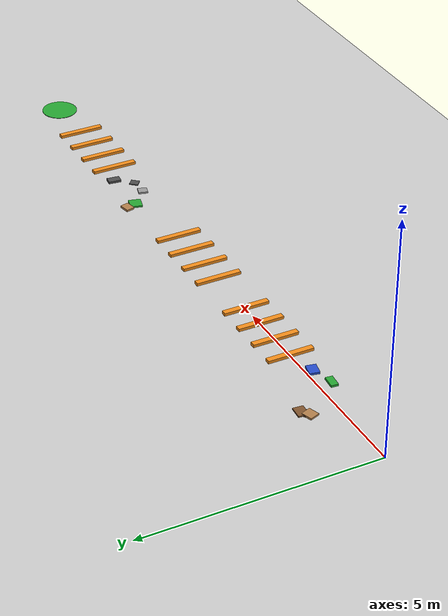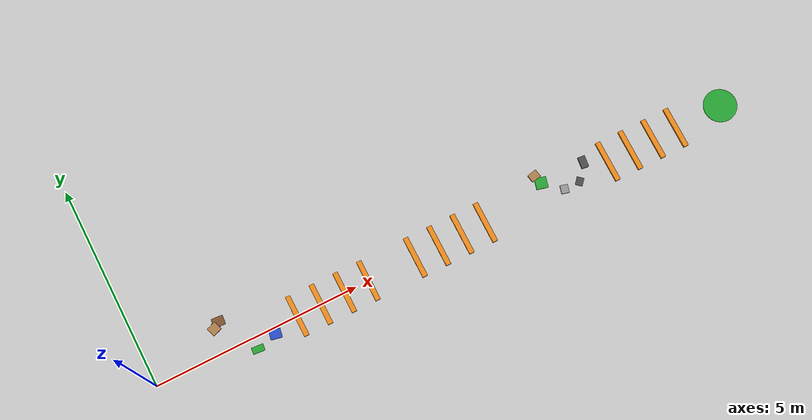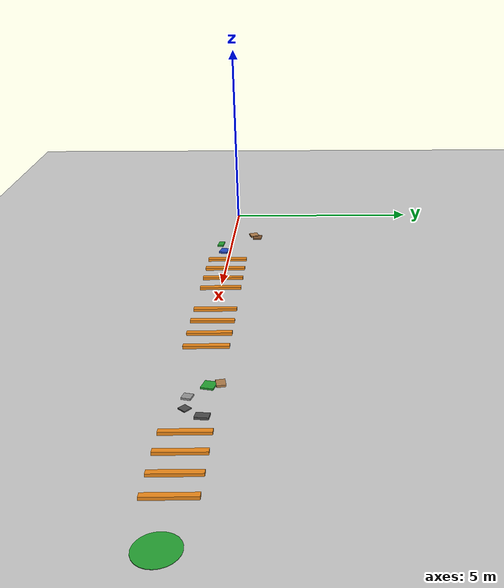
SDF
<?xml version="1.0" ?>
<!-- 由 omni_world.py 自动生成: scene=mixed seed=3 -->
<sdf version="1.5">
  <world name="mixed">
    <physics type="ode">
      <type>world</type>
      <max_step_size>0.001</max_step_size>
      <real_time_update_rate>1000</real_time_update_rate>
      <iters>500</iters>
    </physics>
    <include><uri>model://sun</uri></include>
    <include><uri>model://ground_plane</uri></include>
    <model name="mx_rough_0_0">
      <static>true</static>
      <pose>1.696 0.582 0.020 0.0000 0.0000 1.9025</pose>
      <link name="link">
        <collision name="collision">
          <geometry><box><size>0.221 0.237 0.041</size></box></geometry>
          <surface><friction><ode><mu>1.0</mu><mu2>1.0</mu2></ode></friction></surface>
        </collision>
        <visual name="visual">
          <geometry><box><size>0.221 0.237 0.041</size></box></geometry>
          <material><script><uri>file://media/materials/scripts/gazebo.material</uri>
            <name>Gazebo/Wood</name></script></material>
        </visual>
      </link>
    </model>
    <model name="mx_rough_0_1">
      <static>true</static>
      <pose>1.851 0.694 0.015 0.0000 0.0000 1.4965</pose>
      <link name="link">
        <collision name="collision">
          <geometry><box><size>0.221 0.275 0.029</size></box></geometry>
          <surface><friction><ode><mu>1.0</mu><mu2>1.0</mu2></ode></friction></surface>
        </collision>
        <visual name="visual">
          <geometry><box><size>0.221 0.275 0.029</size></box></geometry>
          <material><script><uri>file://media/materials/scripts/gazebo.material</uri>
            <name>Gazebo/Brown</name></script></material>
        </visual>
      </link>
    </model>
    <model name="mx_rough_0_2">
      <static>true</static>
      <pose>1.727 0.596 0.014 0.0000 0.0000 2.4418</pose>
      <link name="link">
        <collision name="collision">
          <geometry><box><size>0.208 0.152 0.028</size></box></geometry>
          <surface><friction><ode><mu>1.0</mu><mu2>1.0</mu2></ode></friction></surface>
        </collision>
        <visual name="visual">
          <geometry><box><size>0.208 0.152 0.028</size></box></geometry>
          <material><script><uri>file://media/materials/scripts/gazebo.material</uri>
            <name>Gazebo/Brown</name></script></material>
        </visual>
      </link>
    </model>
    <model name="mx_rough_0_3">
      <static>true</static>
      <pose>2.387 -0.278 0.023 0.0000 0.0000 1.4852</pose>
      <link name="link">
        <collision name="collision">
          <geometry><box><size>0.155 0.280 0.047</size></box></geometry>
          <surface><friction><ode><mu>1.0</mu><mu2>1.0</mu2></ode></friction></surface>
        </collision>
        <visual name="visual">
          <geometry><box><size>0.155 0.280 0.047</size></box></geometry>
          <material><script><uri>file://media/materials/scripts/gazebo.material</uri>
            <name>Gazebo/Green</name></script></material>
        </visual>
      </link>
    </model>
    <model name="mx_rough_0_4">
      <static>true</static>
      <pose>2.882 -0.147 0.022 0.0000 0.0000 2.9392</pose>
      <link name="link">
        <collision name="collision">
          <geometry><box><size>0.270 0.217 0.045</size></box></geometry>
          <surface><friction><ode><mu>1.0</mu><mu2>1.0</mu2></ode></friction></surface>
        </collision>
        <visual name="visual">
          <geometry><box><size>0.270 0.217 0.045</size></box></geometry>
          <material><script><uri>file://media/materials/scripts/gazebo.material</uri>
            <name>Gazebo/Blue</name></script></material>
        </visual>
      </link>
    </model>
    <model name="mx_bump_1_0">
      <static>true</static>
      <pose>3.500 0.000 0.033 0.0000 0.0000 0.0000</pose>
      <link name="link">
        <collision name="collision">
          <geometry><box><size>0.120 1.000 0.065</size></box></geometry>
          <surface><friction><ode><mu>1.0</mu><mu2>1.0</mu2></ode></friction></surface>
        </collision>
        <visual name="visual">
          <geometry><box><size>0.120 1.000 0.065</size></box></geometry>
          <material><script><uri>file://media/materials/scripts/gazebo.material</uri>
            <name>Gazebo/Orange</name></script></material>
        </visual>
      </link>
    </model>
    <model name="mx_bump_1_1">
      <static>true</static>
      <pose>4.100 0.000 0.033 0.0000 0.0000 0.0000</pose>
      <link name="link">
        <collision name="collision">
          <geometry><box><size>0.120 1.000 0.065</size></box></geometry>
          <surface><friction><ode><mu>1.0</mu><mu2>1.0</mu2></ode></friction></surface>
        </collision>
        <visual name="visual">
          <geometry><box><size>0.120 1.000 0.065</size></box></geometry>
          <material><script><uri>file://media/materials/scripts/gazebo.material</uri>
            <name>Gazebo/Orange</name></script></material>
        </visual>
      </link>
    </model>
    <model name="mx_bump_1_2">
      <static>true</static>
      <pose>4.700 0.000 0.033 0.0000 0.0000 0.0000</pose>
      <link name="link">
        <collision name="collision">
          <geometry><box><size>0.120 1.000 0.065</size></box></geometry>
          <surface><friction><ode><mu>1.0</mu><mu2>1.0</mu2></ode></friction></surface>
        </collision>
        <visual name="visual">
          <geometry><box><size>0.120 1.000 0.065</size></box></geometry>
          <material><script><uri>file://media/materials/scripts/gazebo.material</uri>
            <name>Gazebo/Orange</name></script></material>
        </visual>
      </link>
    </model>
    <model name="mx_bump_1_3">
      <static>true</static>
      <pose>5.300 0.000 0.033 0.0000 0.0000 0.0000</pose>
      <link name="link">
        <collision name="collision">
          <geometry><box><size>0.120 1.000 0.065</size></box></geometry>
          <surface><friction><ode><mu>1.0</mu><mu2>1.0</mu2></ode></friction></surface>
        </collision>
        <visual name="visual">
          <geometry><box><size>0.120 1.000 0.065</size></box></geometry>
          <material><script><uri>file://media/materials/scripts/gazebo.material</uri>
            <name>Gazebo/Orange</name></script></material>
        </visual>
      </link>
    </model>
    <model name="mx_bump_2_0">
      <static>true</static>
      <pose>6.500 0.000 0.033 0.0000 0.0000 0.0000</pose>
      <link name="link">
        <collision name="collision">
          <geometry><box><size>0.120 1.000 0.065</size></box></geometry>
          <surface><friction><ode><mu>1.0</mu><mu2>1.0</mu2></ode></friction></surface>
        </collision>
        <visual name="visual">
          <geometry><box><size>0.120 1.000 0.065</size></box></geometry>
          <material><script><uri>file://media/materials/scripts/gazebo.material</uri>
            <name>Gazebo/Orange</name></script></material>
        </visual>
      </link>
    </model>
    <model name="mx_bump_2_1">
      <static>true</static>
      <pose>7.100 0.000 0.033 0.0000 0.0000 0.0000</pose>
      <link name="link">
        <collision name="collision">
          <geometry><box><size>0.120 1.000 0.065</size></box></geometry>
          <surface><friction><ode><mu>1.0</mu><mu2>1.0</mu2></ode></friction></surface>
        </collision>
        <visual name="visual">
          <geometry><box><size>0.120 1.000 0.065</size></box></geometry>
          <material><script><uri>file://media/materials/scripts/gazebo.material</uri>
            <name>Gazebo/Orange</name></script></material>
        </visual>
      </link>
    </model>
    <model name="mx_bump_2_2">
      <static>true</static>
      <pose>7.700 0.000 0.033 0.0000 0.0000 0.0000</pose>
      <link name="link">
        <collision name="collision">
          <geometry><box><size>0.120 1.000 0.065</size></box></geometry>
          <surface><friction><ode><mu>1.0</mu><mu2>1.0</mu2></ode></friction></surface>
        </collision>
        <visual name="visual">
          <geometry><box><size>0.120 1.000 0.065</size></box></geometry>
          <material><script><uri>file://media/materials/scripts/gazebo.material</uri>
            <name>Gazebo/Orange</name></script></material>
        </visual>
      </link>
    </model>
    <model name="mx_bump_2_3">
      <static>true</static>
      <pose>8.300 0.000 0.033 0.0000 0.0000 0.0000</pose>
      <link name="link">
        <collision name="collision">
          <geometry><box><size>0.120 1.000 0.065</size></box></geometry>
          <surface><friction><ode><mu>1.0</mu><mu2>1.0</mu2></ode></friction></surface>
        </collision>
        <visual name="visual">
          <geometry><box><size>0.120 1.000 0.065</size></box></geometry>
          <material><script><uri>file://media/materials/scripts/gazebo.material</uri>
            <name>Gazebo/Orange</name></script></material>
        </visual>
      </link>
    </model>
    <model name="mx_rough_3_0">
      <static>true</static>
      <pose>9.887 0.241 0.019 0.0000 0.0000 1.3231</pose>
      <link name="link">
        <collision name="collision">
          <geometry><box><size>0.267 0.278 0.037</size></box></geometry>
          <surface><friction><ode><mu>1.0</mu><mu2>1.0</mu2></ode></friction></surface>
        </collision>
        <visual name="visual">
          <geometry><box><size>0.267 0.278 0.037</size></box></geometry>
          <material><script><uri>file://media/materials/scripts/gazebo.material</uri>
            <name>Gazebo/Green</name></script></material>
        </visual>
      </link>
    </model>
    <model name="mx_rough_3_1">
      <static>true</static>
      <pose>10.301 -0.129 0.020 0.0000 0.0000 2.8769</pose>
      <link name="link">
        <collision name="collision">
          <geometry><box><size>0.185 0.201 0.040</size></box></geometry>
          <surface><friction><ode><mu>1.0</mu><mu2>1.0</mu2></ode></friction></surface>
        </collision>
        <visual name="visual">
          <geometry><box><size>0.185 0.201 0.040</size></box></geometry>
          <material><script><uri>file://media/materials/scripts/gazebo.material</uri>
            <name>Gazebo/Grey</name></script></material>
        </visual>
      </link>
    </model>
    <model name="mx_rough_3_2">
      <static>true</static>
      <pose>10.986 0.240 0.025 0.0000 0.0000 3.0305</pose>
      <link name="link">
        <collision name="collision">
          <geometry><box><size>0.174 0.279 0.050</size></box></geometry>
          <surface><friction><ode><mu>1.0</mu><mu2>1.0</mu2></ode></friction></surface>
        </collision>
        <visual name="visual">
          <geometry><box><size>0.174 0.279 0.050</size></box></geometry>
          <material><script><uri>file://media/materials/scripts/gazebo.material</uri>
            <name>Gazebo/DarkGrey</name></script></material>
        </visual>
      </link>
    </model>
    <model name="mx_rough_3_3">
      <static>true</static>
      <pose>9.817 0.464 0.022 0.0000 0.0000 0.1994</pose>
      <link name="link">
        <collision name="collision">
          <geometry><box><size>0.236 0.193 0.045</size></box></geometry>
          <surface><friction><ode><mu>1.0</mu><mu2>1.0</mu2></ode></friction></surface>
        </collision>
        <visual name="visual">
          <geometry><box><size>0.236 0.193 0.045</size></box></geometry>
          <material><script><uri>file://media/materials/scripts/gazebo.material</uri>
            <name>Gazebo/Wood</name></script></material>
        </visual>
      </link>
    </model>
    <model name="mx_rough_3_4">
      <static>true</static>
      <pose>10.701 -0.125 0.012 0.0000 0.0000 2.4152</pose>
      <link name="link">
        <collision name="collision">
          <geometry><box><size>0.173 0.194 0.023</size></box></geometry>
          <surface><friction><ode><mu>1.0</mu><mu2>1.0</mu2></ode></friction></surface>
        </collision>
        <visual name="visual">
          <geometry><box><size>0.173 0.194 0.023</size></box></geometry>
          <material><script><uri>file://media/materials/scripts/gazebo.material</uri>
            <name>Gazebo/DarkGrey</name></script></material>
        </visual>
      </link>
    </model>
    <model name="mx_bump_4_0">
      <static>true</static>
      <pose>11.500 0.000 0.033 0.0000 0.0000 0.0000</pose>
      <link name="link">
        <collision name="collision">
          <geometry><box><size>0.120 1.000 0.065</size></box></geometry>
          <surface><friction><ode><mu>1.0</mu><mu2>1.0</mu2></ode></friction></surface>
        </collision>
        <visual name="visual">
          <geometry><box><size>0.120 1.000 0.065</size></box></geometry>
          <material><script><uri>file://media/materials/scripts/gazebo.material</uri>
            <name>Gazebo/Orange</name></script></material>
        </visual>
      </link>
    </model>
    <model name="mx_bump_4_1">
      <static>true</static>
      <pose>12.100 0.000 0.033 0.0000 0.0000 0.0000</pose>
      <link name="link">
        <collision name="collision">
          <geometry><box><size>0.120 1.000 0.065</size></box></geometry>
          <surface><friction><ode><mu>1.0</mu><mu2>1.0</mu2></ode></friction></surface>
        </collision>
        <visual name="visual">
          <geometry><box><size>0.120 1.000 0.065</size></box></geometry>
          <material><script><uri>file://media/materials/scripts/gazebo.material</uri>
            <name>Gazebo/Orange</name></script></material>
        </visual>
      </link>
    </model>
    <model name="mx_bump_4_2">
      <static>true</static>
      <pose>12.700 0.000 0.033 0.0000 0.0000 0.0000</pose>
      <link name="link">
        <collision name="collision">
          <geometry><box><size>0.120 1.000 0.065</size></box></geometry>
          <surface><friction><ode><mu>1.0</mu><mu2>1.0</mu2></ode></friction></surface>
        </collision>
        <visual name="visual">
          <geometry><box><size>0.120 1.000 0.065</size></box></geometry>
          <material><script><uri>file://media/materials/scripts/gazebo.material</uri>
            <name>Gazebo/Orange</name></script></material>
        </visual>
      </link>
    </model>
    <model name="mx_bump_4_3">
      <static>true</static>
      <pose>13.300 0.000 0.033 0.0000 0.0000 0.0000</pose>
      <link name="link">
        <collision name="collision">
          <geometry><box><size>0.120 1.000 0.065</size></box></geometry>
          <surface><friction><ode><mu>1.0</mu><mu2>1.0</mu2></ode></friction></surface>
        </collision>
        <visual name="visual">
          <geometry><box><size>0.120 1.000 0.065</size></box></geometry>
          <material><script><uri>file://media/materials/scripts/gazebo.material</uri>
            <name>Gazebo/Orange</name></script></material>
        </visual>
      </link>
    </model>
    <model name="goal">
      <static>true</static>
      <pose>14.500 0.000 0.005 0 0 0</pose>
      <link name="link">
        <visual name="visual">
          <geometry><cylinder><radius>0.400</radius><length>0.01</length></cylinder></geometry>
          <material><script><uri>file://media/materials/scripts/gazebo.material</uri>
            <name>Gazebo/Green</name></script></material>
        </visual>
      </link>
    </model>

  </world>
</sdf>
